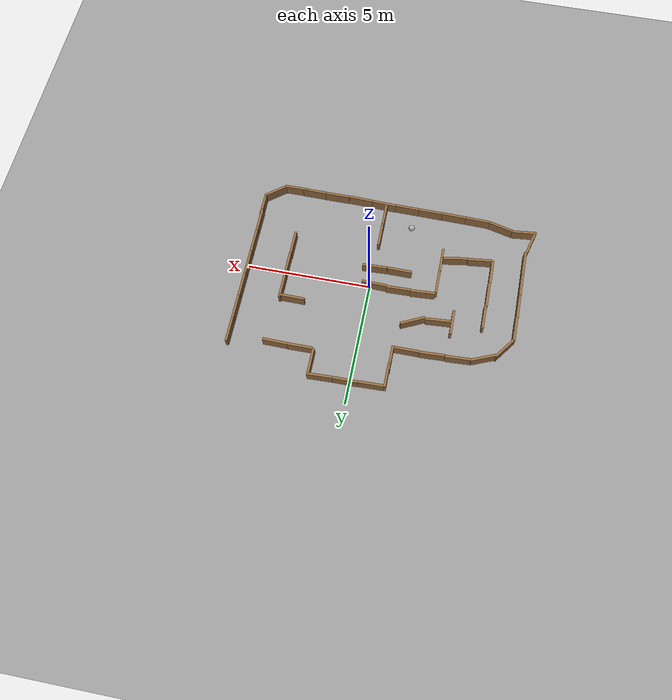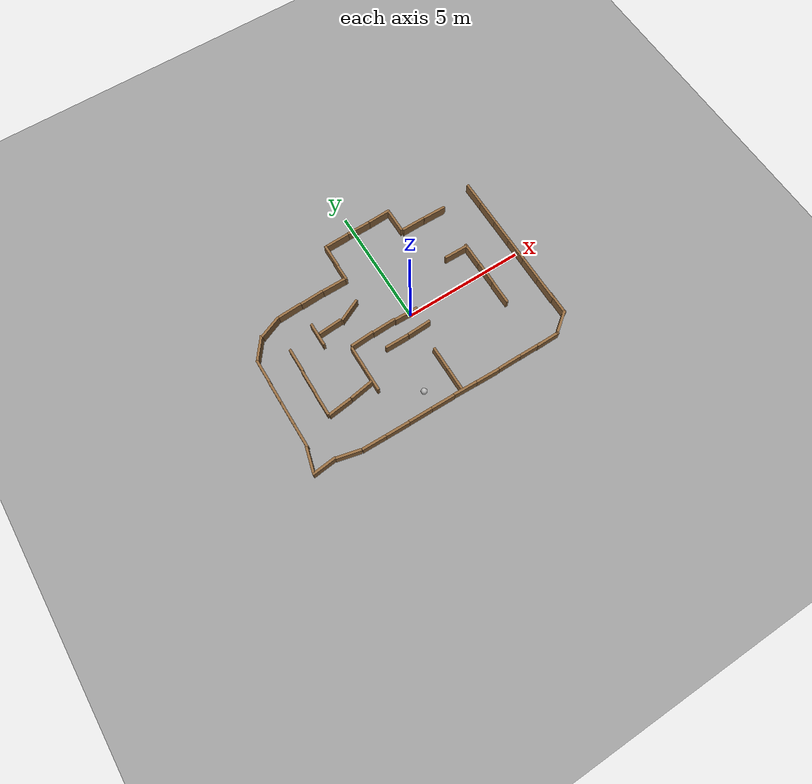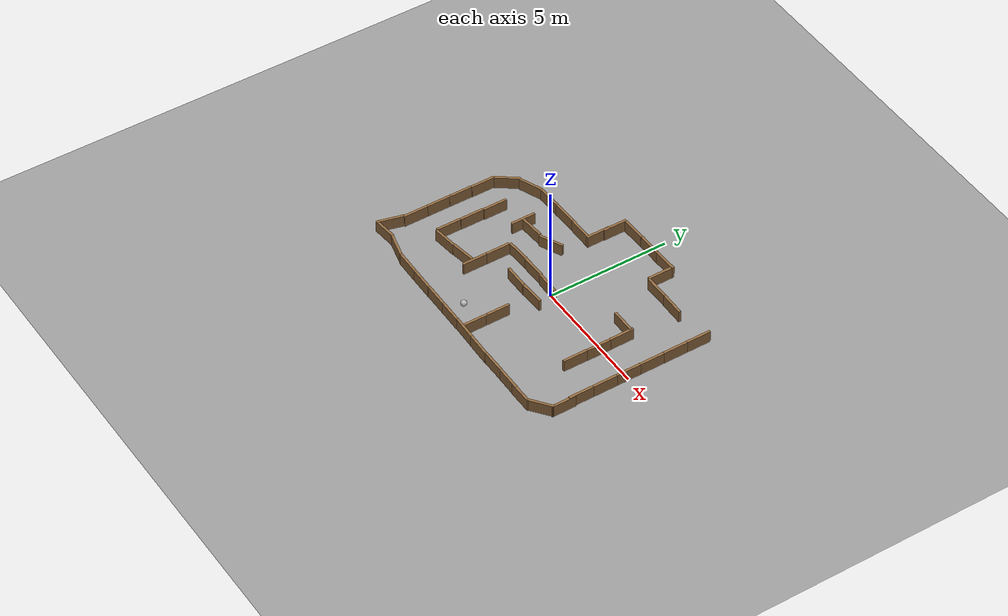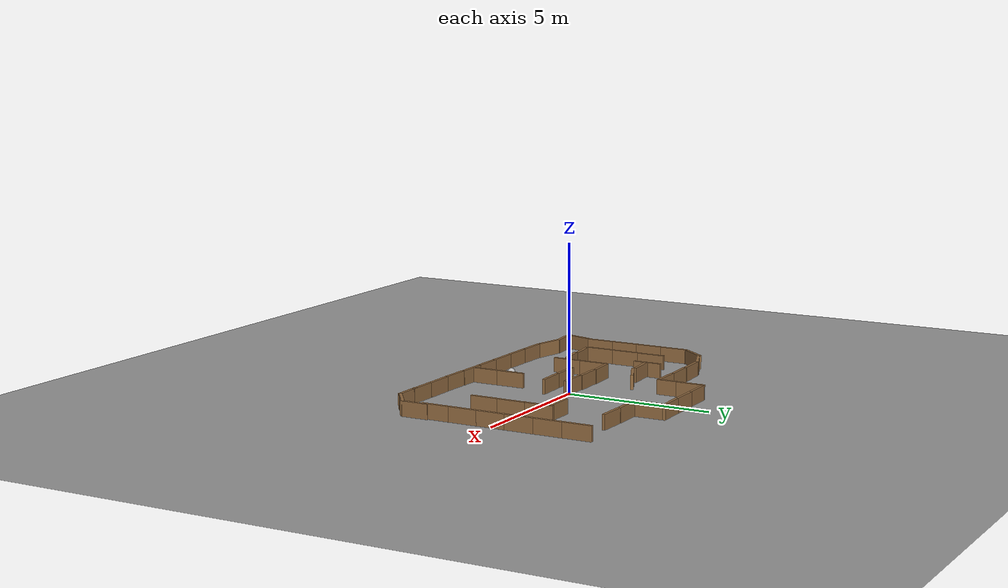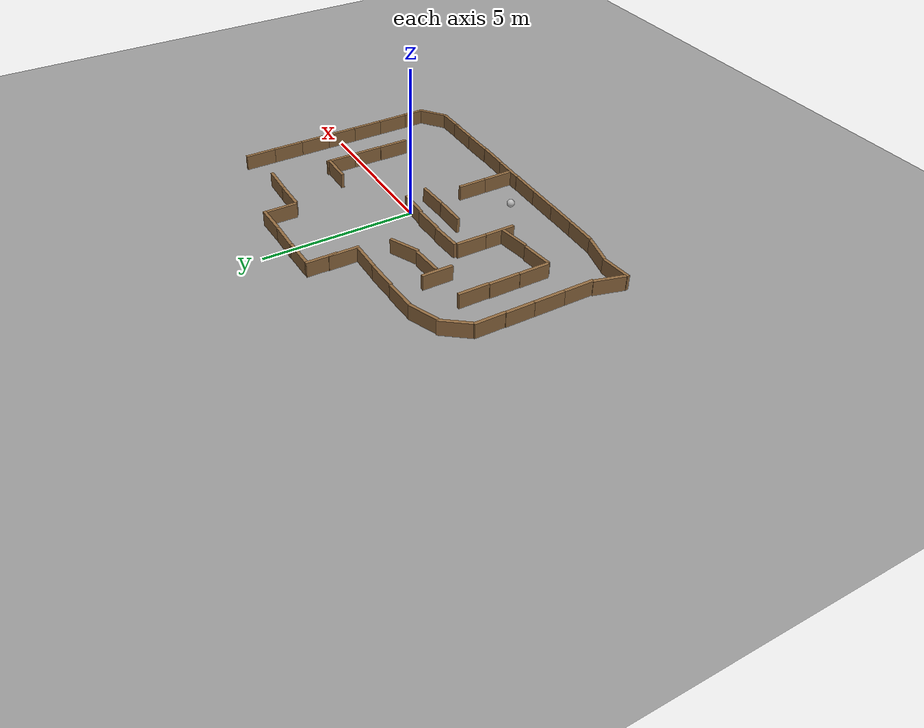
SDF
<sdf version="1.4">
 <world name="default">
  <light name="sun" type="directional">
   <pose>0 0 10 0 -0 0</pose>
   <diffuse>0.8 0.8 0.8 1</diffuse>
   <specular>0.2 0.2 0.2 1</specular>
   <attenuation>
    <range>1000</range>
    <constant>0.9</constant>
    <linear>0.01</linear>
    <quadratic>0.001</quadratic>
   </attenuation>
   <direction>-0.5 0.1 -0.9</direction>
  </light>
  <physics type="ode">
   <max_step_size>0.001</max_step_size>
   <real_time_factor>1</real_time_factor>
   <real_time_update_rate>1000</real_time_update_rate>
   <gravity>0 0 -9.8</gravity>
  </physics>
  <scene><ambient>0.4 0.4 0.4 1</ambient><background>0.7 0.7 0.7 1</background><shadows>1</shadows></scene>
  <spherical_coordinates>
   <surface_model>EARTH_WGS84</surface_model>
   <latitude_deg>0</latitude_deg>
   <longitude_deg>0</longitude_deg>
   <elevation>0</elevation>
   <heading_deg>0</heading_deg>
  </spherical_coordinates>
  <model name="ground_plane_0">
   <static>1</static>
   <link name="link">
    <collision name="collision">
     <geometry><plane><normal>0 0 1</normal><size>100 100</size></plane></geometry>
     <surface><friction><ode><mu>100</mu><mu2>50</mu2></ode></friction></surface>
    </collision>
    <visual name="visual">
     <cast_shadows>0</cast_shadows>
     <geometry><plane><normal>0 0 1</normal><size>100 100</size></plane></geometry>
     <material>
      <script><uri>file://media/materials/scripts/gazebo.material</uri><name>Gazebo/Grey</name></script>
     </material>
    </visual>
    <velocity_decay><linear>0</linear><angular>0</angular></velocity_decay>
   </link>
   <pose>-1 0 0 0 -0 0</pose>
  </model>
  <model name="asphalt_plane_0">
   <static>1</static>
   <link name="link">
    <collision name="collision"><geometry><box><size>20 20 0.1</size></box></geometry></collision>
    <visual name="visual">
     <cast_shadows>0</cast_shadows>
     <geometry><box><size>20 20 0.1</size></box></geometry>
     <material>
      <script>
       <uri>model://asphalt_plane/materials/scripts</uri>
       <uri>model://asphalt_plane/materials/textures</uri>
       <name>vrc/asphalt</name>
      </script>
     </material>
    </visual>
    <velocity_decay><linear>0</linear><angular>0</angular></velocity_decay>
   </link>
   <pose>0.040908 -0.01627 -0.132687 0 -0 0</pose>
  </model>
  <model name="mascor_pappTown_wall">
   <pose>-4.7127 0.627608 0 0 -0 0</pose>
   <static>1</static>
   <link name="link">
    <pose>0 0 0.25 0 -0 0</pose>
    <collision name="collision"><geometry><box><size>0.1 1 0.5</size></box></geometry></collision>
    <visual name="visual">
     <geometry><box><size>0.1 1 0.5</size></box></geometry>
     <material>
      <ambient>0.5 0.5 0.5 1</ambient>
      <diffuse>0.57 0.417 0.25 1</diffuse>
      <specular>0.1 0.1 0.1 1</specular>
      <emissive>0 0 0 0</emissive>
     </material>
    </visual>
    <velocity_decay><linear>0</linear><angular>0</angular></velocity_decay>
   </link>
  </model>
  <model name="mascor_pappTown_wall_0">
   <pose>-4.73882 -0.360759 0 0 -0 0</pose>
   <static>1</static>
   <link name="link">
    <pose>0 0 0.25 0 -0 0</pose>
    <collision name="collision"><geometry><box><size>0.1 1 0.5</size></box></geometry></collision>
    <visual name="visual">
     <geometry><box><size>0.1 1 0.5</size></box></geometry>
     <material>
      <ambient>0.5 0.5 0.5 1</ambient>
      <diffuse>0.57 0.417 0.25 1</diffuse>
      <specular>0.1 0.1 0.1 1</specular>
      <emissive>0 0 0 0</emissive>
     </material>
    </visual>
    <velocity_decay><linear>0</linear><angular>0</angular></velocity_decay>
   </link>
  </model>
  <model name="mascor_pappTown_wall_1">
   <pose>-4.74876 -1.3596 0 0 -0 0</pose>
   <static>1</static>
   <link name="link">
    <pose>0 0 0.25 0 -0 0</pose>
    <collision name="collision"><geometry><box><size>0.1 1 0.5</size></box></geometry></collision>
    <visual name="visual">
     <geometry><box><size>0.1 1 0.5</size></box></geometry>
     <material>
      <ambient>0.5 0.5 0.5 1</ambient>
      <diffuse>0.57 0.417 0.25 1</diffuse>
      <specular>0.1 0.1 0.1 1</specular>
      <emissive>0 0 0 0</emissive>
     </material>
    </visual>
    <velocity_decay><linear>0</linear><angular>0</angular></velocity_decay>
   </link>
  </model>
  <model name="mascor_pappTown_wall_2">
   <pose>-3.23369 -1.69263 0.022969 0 -0 1.72608</pose>
   <static>1</static>
   <link name="link">
    <pose>0 0 0.25 0 -0 0</pose>
    <collision name="collision"><geometry><box><size>0.1 1 0.5</size></box></geometry></collision>
    <visual name="visual">
     <geometry><box><size>0.1 1 0.5</size></box></geometry>
     <material>
      <ambient>0.5 0.5 0.5 1</ambient>
      <diffuse>0.57 0.417 0.25 1</diffuse>
      <specular>0.1 0.1 0.1 1</specular>
      <emissive>0 0 0 0</emissive>
     </material>
    </visual>
    <velocity_decay><linear>0</linear><angular>0</angular></velocity_decay>
   </link>
  </model>
  <model name="mascor_pappTown_wall_3">
   <pose>-2.68707 -0.555734 0 0 -0 0</pose>
   <static>1</static>
   <link name="link">
    <pose>0 0 0.25 0 -0 0</pose>
    <collision name="collision"><geometry><box><size>0.1 1 0.5</size></box></geometry></collision>
    <visual name="visual">
     <geometry><box><size>0.1 1 0.5</size></box></geometry>
     <material>
      <ambient>0.5 0.5 0.5 1</ambient>
      <diffuse>0.57 0.417 0.25 1</diffuse>
      <specular>0.1 0.1 0.1 1</specular>
      <emissive>0 0 0 0</emissive>
     </material>
    </visual>
    <velocity_decay><linear>0</linear><angular>0</angular></velocity_decay>
   </link>
  </model>
  <model name="mascor_pappTown_wall_4">
   <pose>-4.23803 -1.82334 -0.011112 0 -0 1.68393</pose>
   <static>1</static>
   <link name="link">
    <pose>0 0 0.25 0 -0 0</pose>
    <collision name="collision"><geometry><box><size>0.1 1 0.5</size></box></geometry></collision>
    <visual name="visual">
     <geometry><box><size>0.1 1 0.5</size></box></geometry>
     <material>
      <ambient>0.5 0.5 0.5 1</ambient>
      <diffuse>0.57 0.417 0.25 1</diffuse>
      <specular>0.1 0.1 0.1 1</specular>
      <emissive>0 0 0 0</emissive>
     </material>
    </visual>
    <velocity_decay><linear>0</linear><angular>0</angular></velocity_decay>
   </link>
  </model>
  <model name="mascor_pappTown_wall_5">
   <pose>-2.69074 -1.53481 0 0 -0 0</pose>
   <static>1</static>
   <link name="link">
    <pose>0 0 0.25 0 -0 0</pose>
    <collision name="collision"><geometry><box><size>0.1 1 0.5</size></box></geometry></collision>
    <visual name="visual">
     <geometry><box><size>0.1 1 0.5</size></box></geometry>
     <material>
      <ambient>0.5 0.5 0.5 1</ambient>
      <diffuse>0.57 0.417 0.25 1</diffuse>
      <specular>0.1 0.1 0.1 1</specular>
      <emissive>0 0 0 0</emissive>
     </material>
    </visual>
    <velocity_decay><linear>0</linear><angular>0</angular></velocity_decay>
   </link>
  </model>
  <model name="mascor_pappTown_wall_6">
   <pose>-1.09758 -0.76378 0.006571 0 -0 1.56166</pose>
   <static>1</static>
   <link name="link">
    <pose>0 0 0.25 0 -0 0</pose>
    <collision name="collision"><geometry><box><size>0.1 1 0.5</size></box></geometry></collision>
    <visual name="visual">
     <geometry><box><size>0.1 1 0.5</size></box></geometry>
     <material>
      <ambient>0.5 0.5 0.5 1</ambient>
      <diffuse>0.57 0.417 0.25 1</diffuse>
      <specular>0.1 0.1 0.1 1</specular>
      <emissive>0 0 0 0</emissive>
     </material>
    </visual>
    <velocity_decay><linear>0</linear><angular>0</angular></velocity_decay>
   </link>
  </model>
  <model name="mascor_pappTown_wall_7">
   <pose>-2.16812 0.023299 0.00413 0 0 -1.51199</pose>
   <static>1</static>
   <link name="link">
    <pose>0 0 0.25 0 -0 0</pose>
    <collision name="collision"><geometry><box><size>0.1 1 0.5</size></box></geometry></collision>
    <visual name="visual">
     <geometry><box><size>0.1 1 0.5</size></box></geometry>
     <material>
      <ambient>0.5 0.5 0.5 1</ambient>
      <diffuse>0.57 0.417 0.25 1</diffuse>
      <specular>0.1 0.1 0.1 1</specular>
      <emissive>0 0 0 0</emissive>
     </material>
    </visual>
    <velocity_decay><linear>0</linear><angular>0</angular></velocity_decay>
   </link>
  </model>
  <model name="mascor_pappTown_wall_8">
   <pose>-3.51495 1.09124 0 0 -0 0</pose>
   <static>1</static>
   <link name="link">
    <pose>0 0 0.25 0 -0 0</pose>
    <collision name="collision"><geometry><box><size>0.1 1 0.5</size></box></geometry></collision>
    <visual name="visual">
     <geometry><box><size>0.1 1 0.5</size></box></geometry>
     <material>
      <ambient>0.5 0.5 0.5 1</ambient>
      <diffuse>0.57 0.417 0.25 1</diffuse>
      <specular>0.1 0.1 0.1 1</specular>
      <emissive>0 0 0 0</emissive>
     </material>
    </visual>
    <velocity_decay><linear>0</linear><angular>0</angular></velocity_decay>
   </link>
  </model>
  <model name="mascor_pappTown_wall_9">
   <pose>3.40536 -0.207296 0 0 -0 0</pose>
   <static>1</static>
   <link name="link">
    <pose>0 0 0.25 0 -0 0</pose>
    <collision name="collision"><geometry><box><size>0.1 1 0.5</size></box></geometry></collision>
    <visual name="visual">
     <geometry><box><size>0.1 1 0.5</size></box></geometry>
     <material>
      <ambient>0.5 0.5 0.5 1</ambient>
      <diffuse>0.57 0.417 0.25 1</diffuse>
      <specular>0.1 0.1 0.1 1</specular>
      <emissive>0 0 0 0</emissive>
     </material>
    </visual>
    <velocity_decay><linear>0</linear><angular>0</angular></velocity_decay>
   </link>
  </model>
  <model name="mascor_pappTown_wall_10">
   <pose>-2.95297 1.11487 0.013799 0 -0 1.63751</pose>
   <static>1</static>
   <link name="link">
    <pose>0 0 0.25 0 -0 0</pose>
    <collision name="collision"><geometry><box><size>0.1 1 0.5</size></box></geometry></collision>
    <visual name="visual">
     <geometry><box><size>0.1 1 0.5</size></box></geometry>
     <material>
      <ambient>0.5 0.5 0.5 1</ambient>
      <diffuse>0.57 0.417 0.25 1</diffuse>
      <specular>0.1 0.1 0.1 1</specular>
      <emissive>0 0 0 0</emissive>
     </material>
    </visual>
    <velocity_decay><linear>0</linear><angular>0</angular></velocity_decay>
   </link>
  </model>
  <model name="mascor_pappTown_wall_11">
   <pose>-0.049727 -3.18414 0 0 -0 0</pose>
   <static>1</static>
   <link name="link">
    <pose>0 0 0.25 0 -0 0</pose>
    <collision name="collision"><geometry><box><size>0.1 1 0.5</size></box></geometry></collision>
    <visual name="visual">
     <geometry><box><size>0.1 1 0.5</size></box></geometry>
     <material>
      <ambient>0.5 0.5 0.5 1</ambient>
      <diffuse>0.57 0.417 0.25 1</diffuse>
      <specular>0.1 0.1 0.1 1</specular>
      <emissive>0 0 0 0</emissive>
     </material>
    </visual>
    <velocity_decay><linear>0</linear><angular>0</angular></velocity_decay>
   </link>
  </model>
  <model name="mascor_pappTown_wall_12">
   <pose>3.3998 0.783908 0 0 -0 0</pose>
   <static>1</static>
   <link name="link">
    <pose>0 0 0.25 0 -0 0</pose>
    <collision name="collision"><geometry><box><size>0.1 1 0.5</size></box></geometry></collision>
    <visual name="visual">
     <geometry><box><size>0.1 1 0.5</size></box></geometry>
     <material>
      <ambient>0.5 0.5 0.5 1</ambient>
      <diffuse>0.57 0.417 0.25 1</diffuse>
      <specular>0.1 0.1 0.1 1</specular>
      <emissive>0 0 0 0</emissive>
     </material>
    </visual>
    <velocity_decay><linear>0</linear><angular>0</angular></velocity_decay>
   </link>
  </model>
  <model name="mascor_pappTown_wall_13">
   <pose>-0.049486 -2.24795 0 0 -0 0</pose>
   <static>1</static>
   <link name="link">
    <pose>0 0 0.25 0 -0 0</pose>
    <collision name="collision"><geometry><box><size>0.1 1 0.5</size></box></geometry></collision>
    <visual name="visual">
     <geometry><box><size>0.1 1 0.5</size></box></geometry>
     <material>
      <ambient>0.5 0.5 0.5 1</ambient>
      <diffuse>0.57 0.417 0.25 1</diffuse>
      <specular>0.1 0.1 0.1 1</specular>
      <emissive>0 0 0 0</emissive>
     </material>
    </visual>
    <velocity_decay><linear>0</linear><angular>0</angular></velocity_decay>
   </link>
  </model>
  <model name="mascor_pappTown_wall_14">
   <pose>-0.08568 -0.746313 0.006768 0 -0 1.60987</pose>
   <static>1</static>
   <link name="link">
    <pose>0 0 0.25 0 -0 0</pose>
    <collision name="collision"><geometry><box><size>0.1 1 0.5</size></box></geometry></collision>
    <visual name="visual">
     <geometry><box><size>0.1 1 0.5</size></box></geometry>
     <material>
      <ambient>0.5 0.5 0.5 1</ambient>
      <diffuse>0.57 0.417 0.25 1</diffuse>
      <specular>0.1 0.1 0.1 1</specular>
      <emissive>0 0 0 0</emissive>
     </material>
    </visual>
    <velocity_decay><linear>0</linear><angular>0</angular></velocity_decay>
   </link>
  </model>
  <model name="mascor_pappTown_wall_15">
   <pose>-0.203427 0.006696 0.009918 0 -0 1.54657</pose>
   <static>1</static>
   <link name="link">
    <pose>0 0 0.25 0 -0 0</pose>
    <collision name="collision"><geometry><box><size>0.1 1 0.5</size></box></geometry></collision>
    <visual name="visual">
     <geometry><box><size>0.1 1 0.5</size></box></geometry>
     <material>
      <ambient>0.5 0.5 0.5 1</ambient>
      <diffuse>0.57 0.417 0.25 1</diffuse>
      <specular>0.1 0.1 0.1 1</specular>
      <emissive>0 0 0 0</emissive>
     </material>
    </visual>
    <velocity_decay><linear>0</linear><angular>0</angular></velocity_decay>
   </link>
  </model>
  <model name="mascor_pappTown_wall_16">
   <pose>-1.18563 0.042977 0.008215 0 -0 1.59736</pose>
   <static>1</static>
   <link name="link">
    <pose>0 0 0.25 0 -0 0</pose>
    <collision name="collision"><geometry><box><size>0.1 1 0.5</size></box></geometry></collision>
    <visual name="visual">
     <geometry><box><size>0.1 1 0.5</size></box></geometry>
     <material>
      <ambient>0.5 0.5 0.5 1</ambient>
      <diffuse>0.57 0.417 0.25 1</diffuse>
      <specular>0.1 0.1 0.1 1</specular>
      <emissive>0 0 0 0</emissive>
     </material>
    </visual>
    <velocity_decay><linear>0</linear><angular>0</angular></velocity_decay>
   </link>
  </model>
  <model name="mascor_pappTown_wall_17">
   <pose>3.3939 -1.18467 0 0 -0 0</pose>
   <static>1</static>
   <link name="link">
    <pose>0 0 0.25 0 -0 0</pose>
    <collision name="collision"><geometry><box><size>0.1 1 0.5</size></box></geometry></collision>
    <visual name="visual">
     <geometry><box><size>0.1 1 0.5</size></box></geometry>
     <material>
      <ambient>0.5 0.5 0.5 1</ambient>
      <diffuse>0.57 0.417 0.25 1</diffuse>
      <specular>0.1 0.1 0.1 1</specular>
      <emissive>0 0 0 0</emissive>
     </material>
    </visual>
    <velocity_decay><linear>0</linear><angular>0</angular></velocity_decay>
   </link>
  </model>
  <model name="mascor_pappTown_wall_18">
   <pose>2.89691 1.19654 0.007745 0 -0 1.56081</pose>
   <static>1</static>
   <link name="link">
    <pose>0 0 0.25 0 -0 0</pose>
    <collision name="collision"><geometry><box><size>0.1 1 0.5</size></box></geometry></collision>
    <visual name="visual">
     <geometry><box><size>0.1 1 0.5</size></box></geometry>
     <material>
      <ambient>0.5 0.5 0.5 1</ambient>
      <diffuse>0.57 0.417 0.25 1</diffuse>
      <specular>0.1 0.1 0.1 1</specular>
      <emissive>0 0 0 0</emissive>
     </material>
    </visual>
    <velocity_decay><linear>0</linear><angular>0</angular></velocity_decay>
   </link>
  </model>
  <model name="mascor_pappTown_wall_19">
   <pose>-1.97158 1.31027 0.008101 0 -0 2.01046</pose>
   <static>1</static>
   <link name="link">
    <pose>0 0 0.25 0 -0 0</pose>
    <collision name="collision"><geometry><box><size>0.1 1 0.5</size></box></geometry></collision>
    <visual name="visual">
     <geometry><box><size>0.1 1 0.5</size></box></geometry>
     <material>
      <ambient>0.5 0.5 0.5 1</ambient>
      <diffuse>0.57 0.417 0.25 1</diffuse>
      <specular>0.1 0.1 0.1 1</specular>
      <emissive>0 0 0 0</emissive>
     </material>
    </visual>
    <velocity_decay><linear>0</linear><angular>0</angular></velocity_decay>
   </link>
  </model>
  <model name="mascor_pappTown_wall_23">
   <pose>5.0259 -2.75028 -0.012243 0 -0 0</pose>
   <static>1</static>
   <link name="link">
    <pose>0 0 0.25 0 -0 0</pose>
    <collision name="collision"><geometry><box><size>0.1 1 0.5</size></box></geometry></collision>
    <visual name="visual">
     <geometry><box><size>0.1 1 0.5</size></box></geometry>
     <material>
      <ambient>0.5 0.5 0.5 1</ambient>
      <diffuse>0.57 0.417 0.25 1</diffuse>
      <specular>0.1 0.1 0.1 1</specular>
      <emissive>0 0 0 0</emissive>
     </material>
    </visual>
    <velocity_decay><linear>0</linear><angular>0</angular></velocity_decay>
   </link>
  </model>
  <model name="mascor_pappTown_wall_24">
   <pose>5 -2 0 0 -0 0</pose>
   <static>1</static>
   <link name="link">
    <pose>0 0 0.25 0 -0 0</pose>
    <collision name="collision"><geometry><box><size>0.1 1 0.5</size></box></geometry></collision>
    <visual name="visual">
     <geometry><box><size>0.1 1 0.5</size></box></geometry>
     <material>
      <ambient>0.5 0.5 0.5 1</ambient>
      <diffuse>0.57 0.417 0.25 1</diffuse>
      <specular>0.1 0.1 0.1 1</specular>
      <emissive>0 0 0 0</emissive>
     </material>
    </visual>
    <velocity_decay><linear>0</linear><angular>0</angular></velocity_decay>
   </link>
  </model>
  <model name="mascor_pappTown_wall_25">
   <pose>5 -1 0 0 -0 0</pose>
   <static>1</static>
   <link name="link">
    <pose>0 0 0.25 0 -0 0</pose>
    <collision name="collision"><geometry><box><size>0.1 1 0.5</size></box></geometry></collision>
    <visual name="visual">
     <geometry><box><size>0.1 1 0.5</size></box></geometry>
     <material>
      <ambient>0.5 0.5 0.5 1</ambient>
      <diffuse>0.57 0.417 0.25 1</diffuse>
      <specular>0.1 0.1 0.1 1</specular>
      <emissive>0 0 0 0</emissive>
     </material>
    </visual>
    <velocity_decay><linear>0</linear><angular>0</angular></velocity_decay>
   </link>
  </model>
  <model name="mascor_pappTown_wall_26">
   <pose>5 0 0 0 -0 0</pose>
   <static>1</static>
   <link name="link">
    <pose>0 0 0.25 0 -0 0</pose>
    <collision name="collision"><geometry><box><size>0.1 1 0.5</size></box></geometry></collision>
    <visual name="visual">
     <geometry><box><size>0.1 1 0.5</size></box></geometry>
     <material>
      <ambient>0.5 0.5 0.5 1</ambient>
      <diffuse>0.57 0.417 0.25 1</diffuse>
      <specular>0.1 0.1 0.1 1</specular>
      <emissive>0 0 0 0</emissive>
     </material>
    </visual>
    <velocity_decay><linear>0</linear><angular>0</angular></velocity_decay>
   </link>
  </model>
  <model name="mascor_pappTown_wall_27">
   <pose>5 1 0 0 -0 0</pose>
   <static>1</static>
   <link name="link">
    <pose>0 0 0.25 0 -0 0</pose>
    <collision name="collision"><geometry><box><size>0.1 1 0.5</size></box></geometry></collision>
    <visual name="visual">
     <geometry><box><size>0.1 1 0.5</size></box></geometry>
     <material>
      <ambient>0.5 0.5 0.5 1</ambient>
      <diffuse>0.57 0.417 0.25 1</diffuse>
      <specular>0.1 0.1 0.1 1</specular>
      <emissive>0 0 0 0</emissive>
     </material>
    </visual>
    <velocity_decay><linear>0</linear><angular>0</angular></velocity_decay>
   </link>
  </model>
  <model name="mascor_pappTown_wall_28">
   <pose>5 2 0 0 -0 0</pose>
   <static>1</static>
   <link name="link">
    <pose>0 0 0.25 0 -0 0</pose>
    <collision name="collision"><geometry><box><size>0.1 1 0.5</size></box></geometry></collision>
    <visual name="visual">
     <geometry><box><size>0.1 1 0.5</size></box></geometry>
     <material>
      <ambient>0.5 0.5 0.5 1</ambient>
      <diffuse>0.57 0.417 0.25 1</diffuse>
      <specular>0.1 0.1 0.1 1</specular>
      <emissive>0 0 0 0</emissive>
     </material>
    </visual>
    <velocity_decay><linear>0</linear><angular>0</angular></velocity_decay>
   </link>
  </model>
  <model name="mascor_pappTown_wall_29">
   <pose>5 3 0 0 -0 0</pose>
   <static>1</static>
   <link name="link">
    <pose>0 0 0.25 0 -0 0</pose>
    <collision name="collision"><geometry><box><size>0.1 1 0.5</size></box></geometry></collision>
    <visual name="visual">
     <geometry><box><size>0.1 1 0.5</size></box></geometry>
     <material>
      <ambient>0.5 0.5 0.5 1</ambient>
      <diffuse>0.57 0.417 0.25 1</diffuse>
      <specular>0.1 0.1 0.1 1</specular>
      <emissive>0 0 0 0</emissive>
     </material>
    </visual>
    <velocity_decay><linear>0</linear><angular>0</angular></velocity_decay>
   </link>
  </model>
  <model name="mascor_pappTown_wall_30">
   <pose>3.12742 3.16263 0 0 -0 1.55216</pose>
   <static>1</static>
   <link name="link">
    <pose>0 0 0.25 0 -0 0</pose>
    <collision name="collision"><geometry><box><size>0.1 1 0.5</size></box></geometry></collision>
    <visual name="visual">
     <geometry><box><size>0.1 1 0.5</size></box></geometry>
     <material>
      <ambient>0.5 0.5 0.5 1</ambient>
      <diffuse>0.57 0.417 0.25 1</diffuse>
      <specular>0.1 0.1 0.1 1</specular>
      <emissive>0 0 0 0</emissive>
     </material>
    </visual>
    <velocity_decay><linear>0</linear><angular>0</angular></velocity_decay>
   </link>
  </model>
  <model name="mascor_pappTown_wall_31">
   <pose>2.13856 3.17361 0 0 -0 1.57581</pose>
   <static>1</static>
   <link name="link">
    <pose>0 0 0.25 0 -0 0</pose>
    <collision name="collision"><geometry><box><size>0.1 1 0.5</size></box></geometry></collision>
    <visual name="visual">
     <geometry><box><size>0.1 1 0.5</size></box></geometry>
     <material>
      <ambient>0.5 0.5 0.5 1</ambient>
      <diffuse>0.57 0.417 0.25 1</diffuse>
      <specular>0.1 0.1 0.1 1</specular>
      <emissive>0 0 0 0</emissive>
     </material>
    </visual>
    <velocity_decay><linear>0</linear><angular>0</angular></velocity_decay>
   </link>
  </model>
  <model name="mascor_pappTown_wall_32">
   <pose>1.59382 3.68308 0 0 -0 0</pose>
   <static>1</static>
   <link name="link">
    <pose>0 0 0.25 0 -0 0</pose>
    <collision name="collision"><geometry><box><size>0.1 1 0.5</size></box></geometry></collision>
    <visual name="visual">
     <geometry><box><size>0.1 1 0.5</size></box></geometry>
     <material>
      <ambient>0.5 0.5 0.5 1</ambient>
      <diffuse>0.57 0.417 0.25 1</diffuse>
      <specular>0.1 0.1 0.1 1</specular>
      <emissive>0 0 0 0</emissive>
     </material>
    </visual>
    <velocity_decay><linear>0</linear><angular>0</angular></velocity_decay>
   </link>
  </model>
  <model name="mascor_pappTown_wall_33">
   <pose>1.14302 4.21106 0.001983 0 -0 1.60214</pose>
   <static>1</static>
   <link name="link">
    <pose>0 0 0.25 0 -0 0</pose>
    <collision name="collision"><geometry><box><size>0.1 1 0.5</size></box></geometry></collision>
    <visual name="visual">
     <geometry><box><size>0.1 1 0.5</size></box></geometry>
     <material>
      <ambient>0.5 0.5 0.5 1</ambient>
      <diffuse>0.57 0.417 0.25 1</diffuse>
      <specular>0.1 0.1 0.1 1</specular>
      <emissive>0 0 0 0</emissive>
     </material>
    </visual>
    <velocity_decay><linear>0</linear><angular>0</angular></velocity_decay>
   </link>
  </model>
  <model name="mascor_pappTown_wall_34">
   <pose>0.158542 4.19617 0 0 -0 1.56875</pose>
   <static>1</static>
   <link name="link">
    <pose>0 0 0.25 0 -0 0</pose>
    <collision name="collision"><geometry><box><size>0.1 1 0.5</size></box></geometry></collision>
    <visual name="visual">
     <geometry><box><size>0.1 1 0.5</size></box></geometry>
     <material>
      <ambient>0.5 0.5 0.5 1</ambient>
      <diffuse>0.57 0.417 0.25 1</diffuse>
      <specular>0.1 0.1 0.1 1</specular>
      <emissive>0 0 0 0</emissive>
     </material>
    </visual>
    <velocity_decay><linear>0</linear><angular>0</angular></velocity_decay>
   </link>
  </model>
  <model name="mascor_pappTown_wall_35">
   <pose>-0.832961 4.17553 0 0 -0 1.59173</pose>
   <static>1</static>
   <link name="link">
    <pose>0 0 0.25 0 -0 0</pose>
    <collision name="collision"><geometry><box><size>0.1 1 0.5</size></box></geometry></collision>
    <visual name="visual">
     <geometry><box><size>0.1 1 0.5</size></box></geometry>
     <material>
      <ambient>0.5 0.5 0.5 1</ambient>
      <diffuse>0.57 0.417 0.25 1</diffuse>
      <specular>0.1 0.1 0.1 1</specular>
      <emissive>0 0 0 0</emissive>
     </material>
    </visual>
    <velocity_decay><linear>0</linear><angular>0</angular></velocity_decay>
   </link>
  </model>
  <model name="mascor_pappTown_wall_36">
   <pose>-1.38016 3.70454 0 0 -0 0</pose>
   <static>1</static>
   <link name="link">
    <pose>0 0 0.25 0 -0 0</pose>
    <collision name="collision"><geometry><box><size>0.1 1 0.5</size></box></geometry></collision>
    <visual name="visual">
     <geometry><box><size>0.1 1 0.5</size></box></geometry>
     <material>
      <ambient>0.5 0.5 0.5 1</ambient>
      <diffuse>0.57 0.417 0.25 1</diffuse>
      <specular>0.1 0.1 0.1 1</specular>
      <emissive>0 0 0 0</emissive>
     </material>
    </visual>
    <velocity_decay><linear>0</linear><angular>0</angular></velocity_decay>
   </link>
  </model>
  <model name="mascor_pappTown_wall_37">
   <pose>-1.40279 3 0 0 -0 0</pose>
   <static>1</static>
   <link name="link">
    <pose>0 0 0.25 0 -0 0</pose>
    <collision name="collision"><geometry><box><size>0.1 1 0.5</size></box></geometry></collision>
    <visual name="visual">
     <geometry><box><size>0.1 1 0.5</size></box></geometry>
     <material>
      <ambient>0.5 0.5 0.5 1</ambient>
      <diffuse>0.57 0.417 0.25 1</diffuse>
      <specular>0.1 0.1 0.1 1</specular>
      <emissive>0 0 0 0</emissive>
     </material>
    </visual>
    <velocity_decay><linear>0</linear><angular>0</angular></velocity_decay>
   </link>
  </model>
  <model name="mascor_pappTown_wall_38">
   <pose>-1.94662 2.55254 0 0 -0 1.56723</pose>
   <static>1</static>
   <link name="link">
    <pose>0 0 0.25 0 -0 0</pose>
    <collision name="collision"><geometry><box><size>0.1 1 0.5</size></box></geometry></collision>
    <visual name="visual">
     <geometry><box><size>0.1 1 0.5</size></box></geometry>
     <material>
      <ambient>0.5 0.5 0.5 1</ambient>
      <diffuse>0.57 0.417 0.25 1</diffuse>
      <specular>0.1 0.1 0.1 1</specular>
      <emissive>0 0 0 0</emissive>
     </material>
    </visual>
    <velocity_decay><linear>0</linear><angular>0</angular></velocity_decay>
   </link>
  </model>
  <model name="mascor_pappTown_wall_39">
   <pose>-2.93336 2.54743 0 0 -0 1.6104</pose>
   <static>1</static>
   <link name="link">
    <pose>0 0 0.25 0 -0 0</pose>
    <collision name="collision"><geometry><box><size>0.1 1 0.5</size></box></geometry></collision>
    <visual name="visual">
     <geometry><box><size>0.1 1 0.5</size></box></geometry>
     <material>
      <ambient>0.5 0.5 0.5 1</ambient>
      <diffuse>0.57 0.417 0.25 1</diffuse>
      <specular>0.1 0.1 0.1 1</specular>
      <emissive>0 0 0 0</emissive>
     </material>
    </visual>
    <velocity_decay><linear>0</linear><angular>0</angular></velocity_decay>
   </link>
  </model>
  <model name="mascor_pappTown_wall_40">
   <pose>-3.9404 2.52711 0 0 -0 1.61575</pose>
   <static>1</static>
   <link name="link">
    <pose>0 0 0.25 0 -0 0</pose>
    <collision name="collision"><geometry><box><size>0.1 1 0.5</size></box></geometry></collision>
    <visual name="visual">
     <geometry><box><size>0.1 1 0.5</size></box></geometry>
     <material>
      <ambient>0.5 0.5 0.5 1</ambient>
      <diffuse>0.57 0.417 0.25 1</diffuse>
      <specular>0.1 0.1 0.1 1</specular>
      <emissive>0 0 0 0</emissive>
     </material>
    </visual>
    <velocity_decay><linear>0</linear><angular>0</angular></velocity_decay>
   </link>
  </model>
  <model name="mascor_pappTown_wall_41">
   <pose>-4.9013 2.33258 0 0 0 -1.18272</pose>
   <static>1</static>
   <link name="link">
    <pose>0 0 0.25 0 -0 0</pose>
    <collision name="collision"><geometry><box><size>0.1 1 0.5</size></box></geometry></collision>
    <visual name="visual">
     <geometry><box><size>0.1 1 0.5</size></box></geometry>
     <material>
      <ambient>0.5 0.5 0.5 1</ambient>
      <diffuse>0.57 0.417 0.25 1</diffuse>
      <specular>0.1 0.1 0.1 1</specular>
      <emissive>0 0 0 0</emissive>
     </material>
    </visual>
    <velocity_decay><linear>0</linear><angular>0</angular></velocity_decay>
   </link>
  </model>
  <model name="mascor_pappTown_wall_42">
   <pose>-5.98339 0.908123 0 0 -0 0</pose>
   <static>1</static>
   <link name="link">
    <pose>0 0 0.25 0 -0 0</pose>
    <collision name="collision"><geometry><box><size>0.1 1 0.5</size></box></geometry></collision>
    <visual name="visual">
     <geometry><box><size>0.1 1 0.5</size></box></geometry>
     <material>
      <ambient>0.5 0.5 0.5 1</ambient>
      <diffuse>0.57 0.417 0.25 1</diffuse>
      <specular>0.1 0.1 0.1 1</specular>
      <emissive>0 0 0 0</emissive>
     </material>
    </visual>
    <velocity_decay><linear>0</linear><angular>0</angular></velocity_decay>
   </link>
  </model>
  <model name="mascor_pappTown_wall_43">
   <pose>-5.66233 1.80114 0 0 0 -0.644031</pose>
   <static>1</static>
   <link name="link">
    <pose>0 0 0.25 0 -0 0</pose>
    <collision name="collision"><geometry><box><size>0.1 1 0.5</size></box></geometry></collision>
    <visual name="visual">
     <geometry><box><size>0.1 1 0.5</size></box></geometry>
     <material>
      <ambient>0.5 0.5 0.5 1</ambient>
      <diffuse>0.57 0.417 0.25 1</diffuse>
      <specular>0.1 0.1 0.1 1</specular>
      <emissive>0 0 0 0</emissive>
     </material>
    </visual>
    <velocity_decay><linear>0</linear><angular>0</angular></velocity_decay>
   </link>
  </model>
  <model name="mascor_pappTown_wall_44">
   <pose>-5.99757 -0.059493 0 0 -0 0</pose>
   <static>1</static>
   <link name="link">
    <pose>0 0 0.25 0 -0 0</pose>
    <collision name="collision"><geometry><box><size>0.1 1 0.5</size></box></geometry></collision>
    <visual name="visual">
     <geometry><box><size>0.1 1 0.5</size></box></geometry>
     <material>
      <ambient>0.5 0.5 0.5 1</ambient>
      <diffuse>0.57 0.417 0.25 1</diffuse>
      <specular>0.1 0.1 0.1 1</specular>
      <emissive>0 0 0 0</emissive>
     </material>
    </visual>
    <velocity_decay><linear>0</linear><angular>0</angular></velocity_decay>
   </link>
  </model>
  <model name="mascor_pappTown_wall_45">
   <pose>-6 -1 0 0 -0 0</pose>
   <static>1</static>
   <link name="link">
    <pose>0 0 0.25 0 -0 0</pose>
    <collision name="collision"><geometry><box><size>0.1 1 0.5</size></box></geometry></collision>
    <visual name="visual">
     <geometry><box><size>0.1 1 0.5</size></box></geometry>
     <material>
      <ambient>0.5 0.5 0.5 1</ambient>
      <diffuse>0.57 0.417 0.25 1</diffuse>
      <specular>0.1 0.1 0.1 1</specular>
      <emissive>0 0 0 0</emissive>
     </material>
    </visual>
    <velocity_decay><linear>0</linear><angular>0</angular></velocity_decay>
   </link>
  </model>
  <model name="mascor_pappTown_wall_46">
   <pose>-6 -2 0 0 -0 0</pose>
   <static>1</static>
   <link name="link">
    <pose>0 0 0.25 0 -0 0</pose>
    <collision name="collision"><geometry><box><size>0.1 1 0.5</size></box></geometry></collision>
    <visual name="visual">
     <geometry><box><size>0.1 1 0.5</size></box></geometry>
     <material>
      <ambient>0.5 0.5 0.5 1</ambient>
      <diffuse>0.57 0.417 0.25 1</diffuse>
      <specular>0.1 0.1 0.1 1</specular>
      <emissive>0 0 0 0</emissive>
     </material>
    </visual>
    <velocity_decay><linear>0</linear><angular>0</angular></velocity_decay>
   </link>
  </model>
  <model name="mascor_pappTown_wall_47">
   <pose>-6.1546 -2.93804 0 0 0 -0.259672</pose>
   <static>1</static>
   <link name="link">
    <pose>0 0 0.25 0 -0 0</pose>
    <collision name="collision"><geometry><box><size>0.1 1 0.5</size></box></geometry></collision>
    <visual name="visual">
     <geometry><box><size>0.1 1 0.5</size></box></geometry>
     <material>
      <ambient>0.5 0.5 0.5 1</ambient>
      <diffuse>0.57 0.417 0.25 1</diffuse>
      <specular>0.1 0.1 0.1 1</specular>
      <emissive>0 0 0 0</emissive>
     </material>
    </visual>
    <velocity_decay><linear>0</linear><angular>0</angular></velocity_decay>
   </link>
  </model>
  <model name="mascor_pappTown_wall_48">
   <pose>-5.8405 -3.41753 0 0 -0 1.66857</pose>
   <static>1</static>
   <link name="link">
    <pose>0 0 0.25 0 -0 0</pose>
    <collision name="collision"><geometry><box><size>0.1 1 0.5</size></box></geometry></collision>
    <visual name="visual">
     <geometry><box><size>0.1 1 0.5</size></box></geometry>
     <material>
      <ambient>0.5 0.5 0.5 1</ambient>
      <diffuse>0.57 0.417 0.25 1</diffuse>
      <specular>0.1 0.1 0.1 1</specular>
      <emissive>0 0 0 0</emissive>
     </material>
    </visual>
    <velocity_decay><linear>0</linear><angular>0</angular></velocity_decay>
   </link>
  </model>
  <model name="mascor_pappTown_wall_49">
   <pose>-4.87354 -3.50643 0 0 -0 1.33245</pose>
   <static>1</static>
   <link name="link">
    <pose>0 0 0.25 0 -0 0</pose>
    <collision name="collision"><geometry><box><size>0.1 1 0.5</size></box></geometry></collision>
    <visual name="visual">
     <geometry><box><size>0.1 1 0.5</size></box></geometry>
     <material>
      <ambient>0.5 0.5 0.5 1</ambient>
      <diffuse>0.57 0.417 0.25 1</diffuse>
      <specular>0.1 0.1 0.1 1</specular>
      <emissive>0 0 0 0</emissive>
     </material>
    </visual>
    <velocity_decay><linear>0</linear><angular>0</angular></velocity_decay>
   </link>
  </model>
  <model name="mascor_pappTown_wall_50">
   <pose>-3.8732 -3.64547 0 0 -0 1.54613</pose>
   <static>1</static>
   <link name="link">
    <pose>0 0 0.25 0 -0 0</pose>
    <collision name="collision"><geometry><box><size>0.1 1 0.5</size></box></geometry></collision>
    <visual name="visual">
     <geometry><box><size>0.1 1 0.5</size></box></geometry>
     <material>
      <ambient>0.5 0.5 0.5 1</ambient>
      <diffuse>0.57 0.417 0.25 1</diffuse>
      <specular>0.1 0.1 0.1 1</specular>
      <emissive>0 0 0 0</emissive>
     </material>
    </visual>
    <velocity_decay><linear>0</linear><angular>0</angular></velocity_decay>
   </link>
  </model>
  <model name="mascor_pappTown_wall_51">
   <pose>-2.87827 -3.66736 0 0 -0 1.55227</pose>
   <static>1</static>
   <link name="link">
    <pose>0 0 0.25 0 -0 0</pose>
    <collision name="collision"><geometry><box><size>0.1 1 0.5</size></box></geometry></collision>
    <visual name="visual">
     <geometry><box><size>0.1 1 0.5</size></box></geometry>
     <material>
      <ambient>0.5 0.5 0.5 1</ambient>
      <diffuse>0.57 0.417 0.25 1</diffuse>
      <specular>0.1 0.1 0.1 1</specular>
      <emissive>0 0 0 0</emissive>
     </material>
    </visual>
    <velocity_decay><linear>0</linear><angular>0</angular></velocity_decay>
   </link>
  </model>
  <model name="mascor_pappTown_wall_52">
   <pose>-0.916685 -3.6919 0 0 -0 1.55039</pose>
   <static>1</static>
   <link name="link">
    <pose>0 0 0.25 0 -0 0</pose>
    <collision name="collision"><geometry><box><size>0.1 1 0.5</size></box></geometry></collision>
    <visual name="visual">
     <geometry><box><size>0.1 1 0.5</size></box></geometry>
     <material>
      <ambient>0.5 0.5 0.5 1</ambient>
      <diffuse>0.57 0.417 0.25 1</diffuse>
      <specular>0.1 0.1 0.1 1</specular>
      <emissive>0 0 0 0</emissive>
     </material>
    </visual>
    <velocity_decay><linear>0</linear><angular>0</angular></velocity_decay>
   </link>
  </model>
  <model name="mascor_pappTown_wall_53">
   <pose>-1.90069 -3.6769 0 0 0 -1.58654</pose>
   <static>1</static>
   <link name="link">
    <pose>0 0 0.25 0 -0 0</pose>
    <collision name="collision"><geometry><box><size>0.1 1 0.5</size></box></geometry></collision>
    <visual name="visual">
     <geometry><box><size>0.1 1 0.5</size></box></geometry>
     <material>
      <ambient>0.5 0.5 0.5 1</ambient>
      <diffuse>0.57 0.417 0.25 1</diffuse>
      <specular>0.1 0.1 0.1 1</specular>
      <emissive>0 0 0 0</emissive>
     </material>
    </visual>
    <velocity_decay><linear>0</linear><angular>0</angular></velocity_decay>
   </link>
  </model>
  <model name="mascor_pappTown_wall_54">
   <pose>0.066714 -3.70558 0 -0.00444 -0.000143 -1.60293</pose>
   <static>1</static>
   <link name="link">
    <pose>0 0 0.25 0 -0 0</pose>
    <collision name="collision"><geometry><box><size>0.1 1 0.5</size></box></geometry></collision>
    <visual name="visual">
     <geometry><box><size>0.1 1 0.5</size></box></geometry>
     <material>
      <ambient>0.5 0.5 0.5 1</ambient>
      <diffuse>0.57 0.417 0.25 1</diffuse>
      <specular>0.1 0.1 0.1 1</specular>
      <emissive>0 0 0 0</emissive>
     </material>
    </visual>
    <velocity_decay><linear>0</linear><angular>0</angular></velocity_decay>
   </link>
  </model>
  <model name="mascor_pappTown_wall_55">
   <pose>1.06322 -3.74144 0 0 -0 1.54146</pose>
   <static>1</static>
   <link name="link">
    <pose>0 0 0.25 0 -0 0</pose>
    <collision name="collision"><geometry><box><size>0.1 1 0.5</size></box></geometry></collision>
    <visual name="visual">
     <geometry><box><size>0.1 1 0.5</size></box></geometry>
     <material>
      <ambient>0.5 0.5 0.5 1</ambient>
      <diffuse>0.57 0.417 0.25 1</diffuse>
      <specular>0.1 0.1 0.1 1</specular>
      <emissive>0 0 0 0</emissive>
     </material>
    </visual>
    <velocity_decay><linear>0</linear><angular>0</angular></velocity_decay>
   </link>
  </model>
  <model name="mascor_pappTown_wall_56">
   <pose>2.05698 -3.74574 0 0 -0 1.57074</pose>
   <static>1</static>
   <link name="link">
    <pose>0 0 0.25 0 -0 0</pose>
    <collision name="collision"><geometry><box><size>0.1 1 0.5</size></box></geometry></collision>
    <visual name="visual">
     <geometry><box><size>0.1 1 0.5</size></box></geometry>
     <material>
      <ambient>0.5 0.5 0.5 1</ambient>
      <diffuse>0.57 0.417 0.25 1</diffuse>
      <specular>0.1 0.1 0.1 1</specular>
      <emissive>0 0 0 0</emissive>
     </material>
    </visual>
    <velocity_decay><linear>0</linear><angular>0</angular></velocity_decay>
   </link>
  </model>
  <model name="mascor_pappTown_wall_57">
   <pose>3.03671 -3.75602 0 0 -0 1.5616</pose>
   <static>1</static>
   <link name="link">
    <pose>0 0 0.25 0 -0 0</pose>
    <collision name="collision"><geometry><box><size>0.1 1 0.5</size></box></geometry></collision>
    <visual name="visual">
     <geometry><box><size>0.1 1 0.5</size></box></geometry>
     <material>
      <ambient>0.5 0.5 0.5 1</ambient>
      <diffuse>0.57 0.417 0.25 1</diffuse>
      <specular>0.1 0.1 0.1 1</specular>
      <emissive>0 0 0 0</emissive>
     </material>
    </visual>
    <velocity_decay><linear>0</linear><angular>0</angular></velocity_decay>
   </link>
  </model>
  <model name="mascor_pappTown_wall_58">
   <pose>3.82756 -3.76843 0 0 -0 1.5764</pose>
   <static>1</static>
   <link name="link">
    <pose>0 0 0.25 0 -0 0</pose>
    <collision name="collision"><geometry><box><size>0.1 1 0.5</size></box></geometry></collision>
    <visual name="visual">
     <geometry><box><size>0.1 1 0.5</size></box></geometry>
     <material>
      <ambient>0.5 0.5 0.5 1</ambient>
      <diffuse>0.57 0.417 0.25 1</diffuse>
      <specular>0.1 0.1 0.1 1</specular>
      <emissive>0 0 0 0</emissive>
     </material>
    </visual>
    <velocity_decay><linear>0</linear><angular>0</angular></velocity_decay>
   </link>
  </model>
  <model name="mascor_pappTown_wall_59">
   <pose>4.65558 -3.46897 0 0 0 -0.914758</pose>
   <static>1</static>
   <link name="link">
    <pose>0 0 0.25 0 -0 0</pose>
    <collision name="collision"><geometry><box><size>0.1 1 0.5</size></box></geometry></collision>
    <visual name="visual">
     <geometry><box><size>0.1 1 0.5</size></box></geometry>
     <material>
      <ambient>0.5 0.5 0.5 1</ambient>
      <diffuse>0.57 0.417 0.25 1</diffuse>
      <specular>0.1 0.1 0.1 1</specular>
      <emissive>0 0 0 0</emissive>
     </material>
    </visual>
    <velocity_decay><linear>0</linear><angular>0</angular></velocity_decay>
   </link>
  </model>
  <model name="frc2016_ball">
   <pose>-1.24428 -2.91642 0.184896 0.033508 0.000333 1.81303</pose>
   <link name="link">
    <inertial>
     <mass>0.213</mass>
     <inertia>
      <ixx>0.00322667</ixx>
      <ixy>0</ixy>
      <ixz>0</ixz>
      <iyy>0.00322667</iyy>
      <iyz>0</iyz>
      <izz>0.00322667</izz>
     </inertia>
    </inertial>
    <visual name="visual"><geometry><sphere><radius>0.127</radius></sphere></geometry></visual>
    <collision name="collision">
     <geometry><sphere><radius>0.127</radius></sphere></geometry>
     <surface>
      <bounce><restitution_coefficient>0.15937</restitution_coefficient><threshold>0</threshold></bounce>
      <contact><ode><max_vel>100</max_vel><min_depth>0.001</min_depth></ode></contact>
     </surface>
    </collision>
    <velocity_decay><linear>0</linear><angular>0</angular></velocity_decay>
   </link>
   <static>0</static>
  </model>
 </world>
</sdf>
